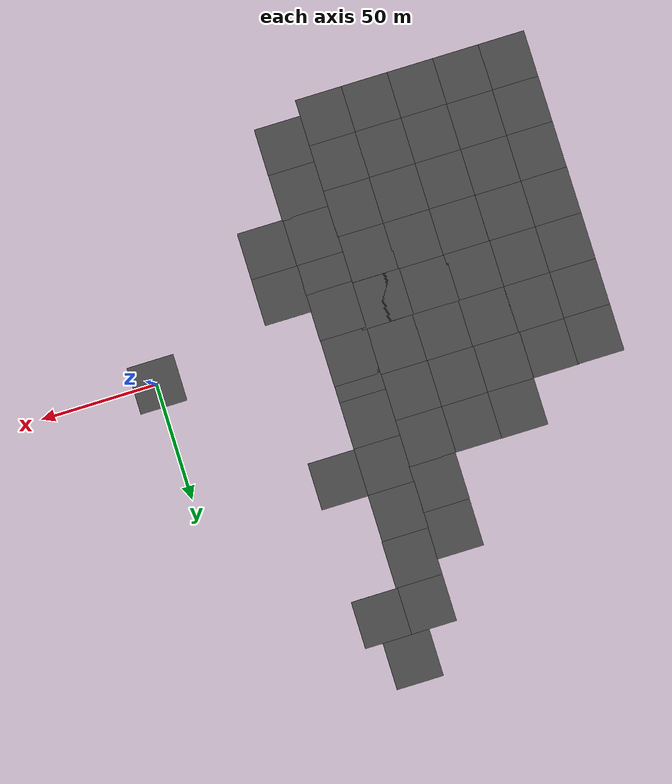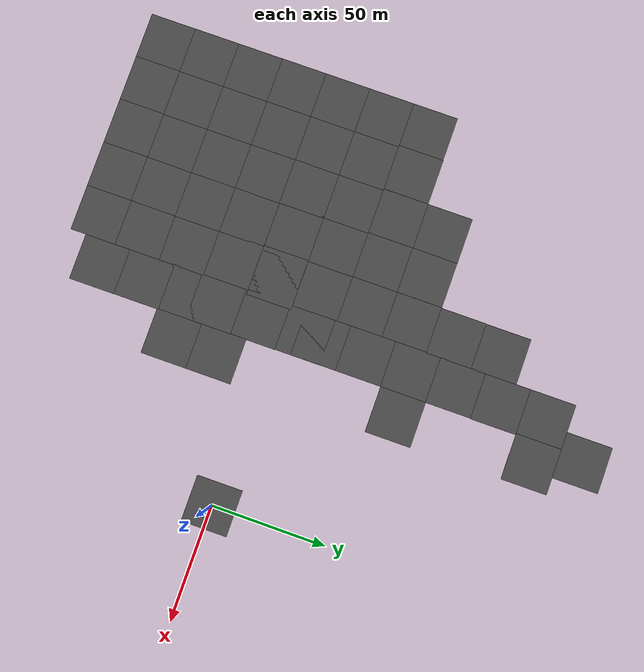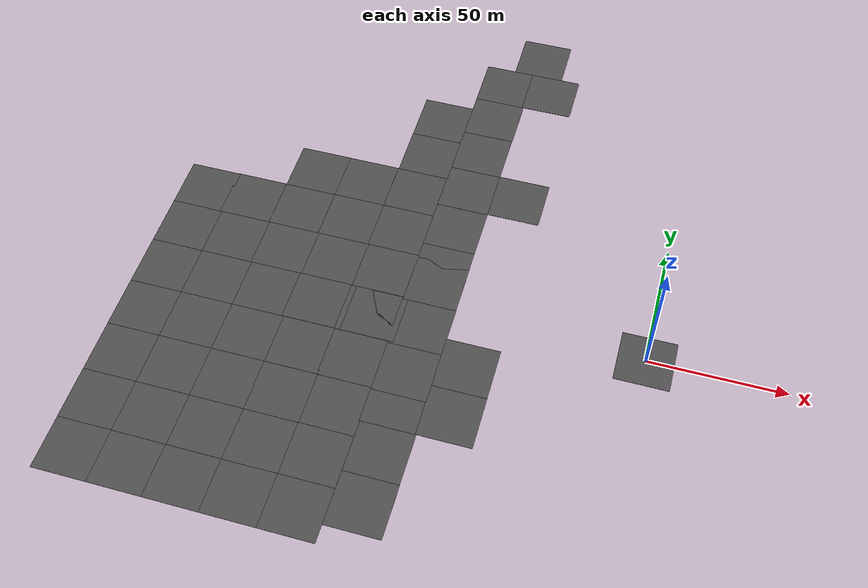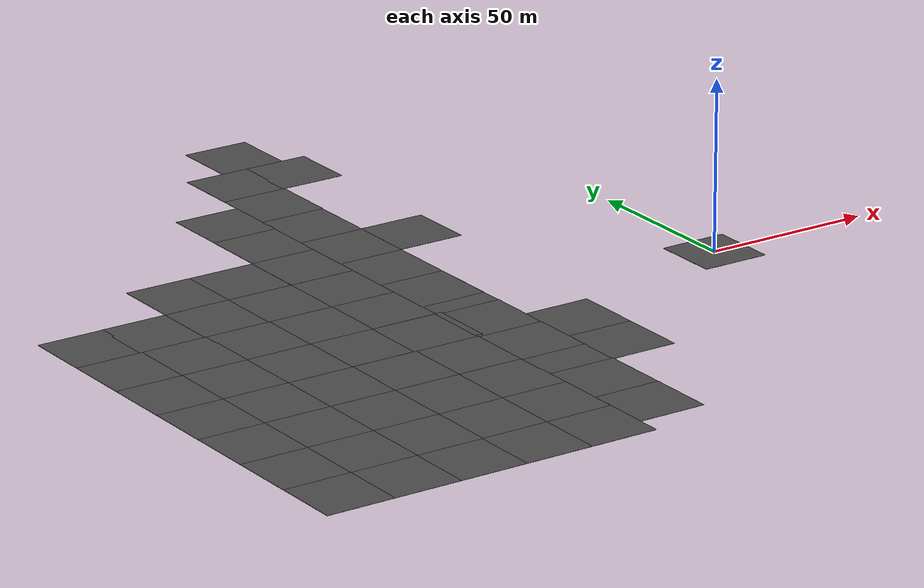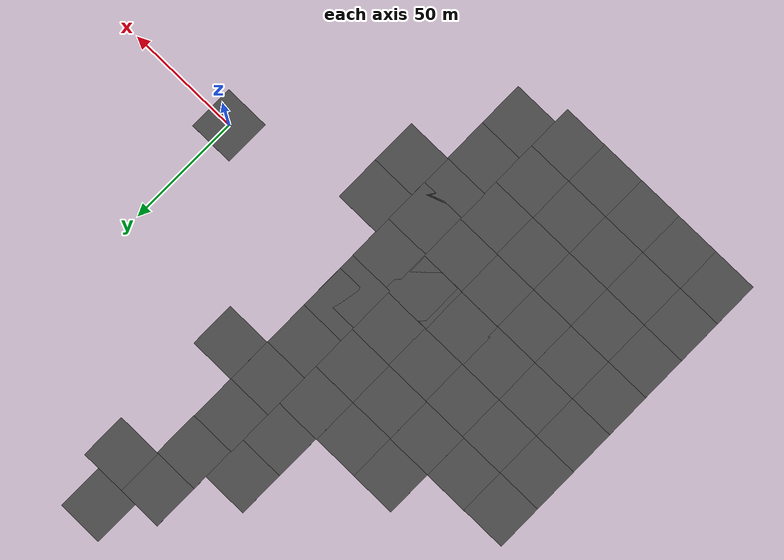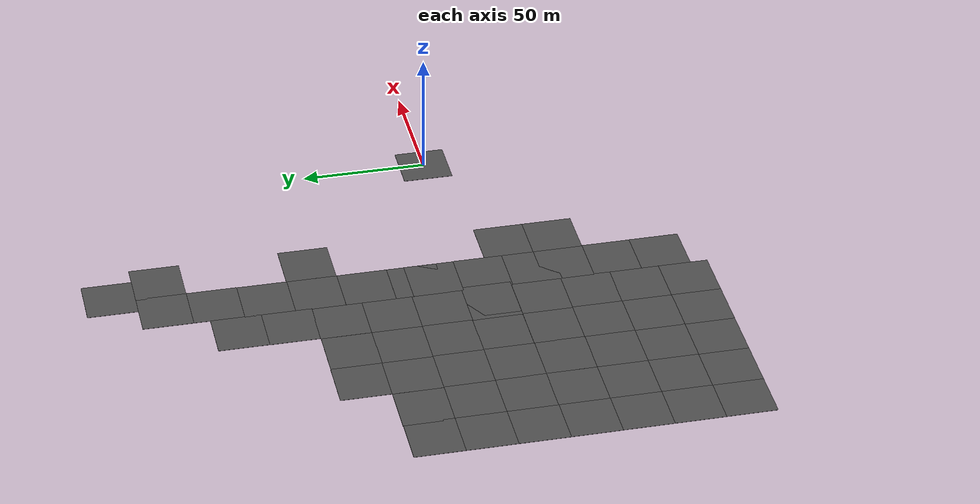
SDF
<sdf version="1.7">
 <world name="default">
  <model name="asphalt_plane">
   <static>1</static>
   <link name="link">
    <collision name="collision"><geometry><box><size>20 20 0.1</size></box></geometry></collision>
    <visual name="visual">
     <cast_shadows>0</cast_shadows>
     <geometry><box><size>20 20 0.1</size></box></geometry>
     <material>
      <script>
       <uri>model://asphalt_plane/materials/scripts</uri>
       <uri>model://asphalt_plane/materials/textures</uri>
       <name>vrc/asphalt</name>
      </script>
     </material>
    </visual>
   </link>
  </model>
  <model name="asphalt_plane_23">
   <static>1</static>
   <link name="link">
    <collision name="collision"><geometry><box><size>20 20 0.1</size></box></geometry></collision>
    <visual name="visual">
     <cast_shadows>0</cast_shadows>
     <geometry><box><size>20 20 0.1</size></box></geometry>
     <material>
      <script>
       <uri>model://asphalt_plane/materials/scripts</uri>
       <uri>model://asphalt_plane/materials/textures</uri>
       <name>vrc/asphalt</name>
      </script>
     </material>
    </visual>
   </link>
   <pose>-60 -40 0 0 -0 0</pose>
  </model>
  <model name="asphalt_plane_24">
   <static>1</static>
   <link name="link">
    <collision name="collision"><geometry><box><size>20 20 0.1</size></box></geometry></collision>
    <visual name="visual">
     <cast_shadows>0</cast_shadows>
     <geometry><box><size>20 20 0.1</size></box></geometry>
     <material>
      <script>
       <uri>model://asphalt_plane/materials/scripts</uri>
       <uri>model://asphalt_plane/materials/textures</uri>
       <name>vrc/asphalt</name>
      </script>
     </material>
    </visual>
   </link>
   <pose>-60 -20 0 0 -0 0</pose>
  </model>
  <model name="asphalt_plane_29_clone">
   <static>1</static>
   <link name="link">
    <collision name="collision"><geometry><box><size>20 20 0.1</size></box></geometry></collision>
    <visual name="visual">
     <cast_shadows>0</cast_shadows>
     <geometry><box><size>20 20 0.1</size></box></geometry>
     <material>
      <script>
       <uri>model://asphalt_plane/materials/scripts</uri>
       <uri>model://asphalt_plane/materials/textures</uri>
       <name>vrc/asphalt</name>
      </script>
     </material>
    </visual>
   </link>
   <pose>-60.0272 59.8561 0 0 -0 0</pose>
  </model>
  <model name="asphalt_plane_29_clone_35">
   <static>1</static>
   <link name="link">
    <collision name="collision"><geometry><box><size>20 20 0.1</size></box></geometry></collision>
    <visual name="visual">
     <cast_shadows>0</cast_shadows>
     <geometry><box><size>20 20 0.1</size></box></geometry>
     <material>
      <script>
       <uri>model://asphalt_plane/materials/scripts</uri>
       <uri>model://asphalt_plane/materials/textures</uri>
       <name>vrc/asphalt</name>
      </script>
     </material>
    </visual>
   </link>
   <pose>-79.8154 -7.24988 0 0 -0 0</pose>
  </model>
  <model name="asphalt_plane_29_clone_36">
   <static>1</static>
   <link name="link">
    <collision name="collision"><geometry><box><size>20 20 0.1</size></box></geometry></collision>
    <visual name="visual">
     <cast_shadows>0</cast_shadows>
     <geometry><box><size>20 20 0.1</size></box></geometry>
     <material>
      <script>
       <uri>model://asphalt_plane/materials/scripts</uri>
       <uri>model://asphalt_plane/materials/textures</uri>
       <name>vrc/asphalt</name>
      </script>
     </material>
    </visual>
   </link>
   <pose>-79.8314 -27.0702 0 0 -0 0</pose>
  </model>
  <model name="asphalt_plane_29_clone_37">
   <static>1</static>
   <link name="link">
    <collision name="collision"><geometry><box><size>20 20 0.1</size></box></geometry></collision>
    <visual name="visual">
     <cast_shadows>0</cast_shadows>
     <geometry><box><size>20 20 0.1</size></box></geometry>
     <material>
      <script>
       <uri>model://asphalt_plane/materials/scripts</uri>
       <uri>model://asphalt_plane/materials/textures</uri>
       <name>vrc/asphalt</name>
      </script>
     </material>
    </visual>
   </link>
   <pose>-79.8153 -40.0671 0 0 -0 0</pose>
  </model>
  <model name="asphalt_plane_29_clone_45">
   <static>1</static>
   <link name="link">
    <collision name="collision"><geometry><box><size>20 20 0.1</size></box></geometry></collision>
    <visual name="visual">
     <cast_shadows>0</cast_shadows>
     <geometry><box><size>20 20 0.1</size></box></geometry>
     <material>
      <script>
       <uri>model://asphalt_plane/materials/scripts</uri>
       <uri>model://asphalt_plane/materials/textures</uri>
       <name>vrc/asphalt</name>
      </script>
     </material>
    </visual>
   </link>
   <pose>-99.8105 13.4482 0 0 -0 0</pose>
  </model>
  <model name="asphalt_plane_29_clone_46">
   <static>1</static>
   <link name="link">
    <collision name="collision"><geometry><box><size>20 20 0.1</size></box></geometry></collision>
    <visual name="visual">
     <cast_shadows>0</cast_shadows>
     <geometry><box><size>20 20 0.1</size></box></geometry>
     <material>
      <script>
       <uri>model://asphalt_plane/materials/scripts</uri>
       <uri>model://asphalt_plane/materials/textures</uri>
       <name>vrc/asphalt</name>
      </script>
     </material>
    </visual>
   </link>
   <pose>-119.627 13.4689 0 0 -0 0</pose>
  </model>
  <model name="asphalt_plane_29_clone_47">
   <static>1</static>
   <link name="link">
    <collision name="collision"><geometry><box><size>20 20 0.1</size></box></geometry></collision>
    <visual name="visual">
     <cast_shadows>0</cast_shadows>
     <geometry><box><size>20 20 0.1</size></box></geometry>
     <material>
      <script>
       <uri>model://asphalt_plane/materials/scripts</uri>
       <uri>model://asphalt_plane/materials/textures</uri>
       <name>vrc/asphalt</name>
      </script>
     </material>
    </visual>
   </link>
   <pose>-139.581 13.4618 0 0 -0 0</pose>
  </model>
  <model name="asphalt_plane_29_clone_49">
   <static>1</static>
   <link name="link">
    <collision name="collision"><geometry><box><size>20 20 0.1</size></box></geometry></collision>
    <visual name="visual">
     <cast_shadows>0</cast_shadows>
     <geometry><box><size>20 20 0.1</size></box></geometry>
     <material>
      <script>
       <uri>model://asphalt_plane/materials/scripts</uri>
       <uri>model://asphalt_plane/materials/textures</uri>
       <name>vrc/asphalt</name>
      </script>
     </material>
    </visual>
   </link>
   <pose>-159.291 13.4361 0 0 -0 0</pose>
  </model>
  <model name="asphalt_plane_29_clone_52">
   <static>1</static>
   <link name="link">
    <collision name="collision"><geometry><box><size>20 20 0.1</size></box></geometry></collision>
    <visual name="visual">
     <cast_shadows>0</cast_shadows>
     <geometry><box><size>20 20 0.1</size></box></geometry>
     <material>
      <script>
       <uri>model://asphalt_plane/materials/scripts</uri>
       <uri>model://asphalt_plane/materials/textures</uri>
       <name>vrc/asphalt</name>
      </script>
     </material>
    </visual>
   </link>
   <pose>-179.252 13.443 0 0 -0 0</pose>
  </model>
  <model name="asphalt_plane_29_clone_53">
   <static>1</static>
   <link name="link">
    <collision name="collision"><geometry><box><size>20 20 0.1</size></box></geometry></collision>
    <visual name="visual">
     <cast_shadows>0</cast_shadows>
     <geometry><box><size>20 20 0.1</size></box></geometry>
     <material>
      <script>
       <uri>model://asphalt_plane/materials/scripts</uri>
       <uri>model://asphalt_plane/materials/textures</uri>
       <name>vrc/asphalt</name>
      </script>
     </material>
    </visual>
   </link>
   <pose>-179.25 -6.53618 0 0 -0 0</pose>
  </model>
  <model name="asphalt_plane_29_clone_54">
   <static>1</static>
   <link name="link">
    <collision name="collision"><geometry><box><size>20 20 0.1</size></box></geometry></collision>
    <visual name="visual">
     <cast_shadows>0</cast_shadows>
     <geometry><box><size>20 20 0.1</size></box></geometry>
     <material>
      <script>
       <uri>model://asphalt_plane/materials/scripts</uri>
       <uri>model://asphalt_plane/materials/textures</uri>
       <name>vrc/asphalt</name>
      </script>
     </material>
    </visual>
   </link>
   <pose>-179.246 -26.5369 0 0 -0 0</pose>
  </model>
  <model name="asphalt_plane_29_clone_55">
   <static>1</static>
   <link name="link">
    <collision name="collision"><geometry><box><size>20 20 0.1</size></box></geometry></collision>
    <visual name="visual">
     <cast_shadows>0</cast_shadows>
     <geometry><box><size>20 20 0.1</size></box></geometry>
     <material>
      <script>
       <uri>model://asphalt_plane/materials/scripts</uri>
       <uri>model://asphalt_plane/materials/textures</uri>
       <name>vrc/asphalt</name>
      </script>
     </material>
    </visual>
   </link>
   <pose>-179.197 -46.4492 0 0 -0 0</pose>
  </model>
  <model name="asphalt_plane_29_clone_56">
   <static>1</static>
   <link name="link">
    <collision name="collision"><geometry><box><size>20 20 0.1</size></box></geometry></collision>
    <visual name="visual">
     <cast_shadows>0</cast_shadows>
     <geometry><box><size>20 20 0.1</size></box></geometry>
     <material>
      <script>
       <uri>model://asphalt_plane/materials/scripts</uri>
       <uri>model://asphalt_plane/materials/textures</uri>
       <name>vrc/asphalt</name>
      </script>
     </material>
    </visual>
   </link>
   <pose>-179.192 -66.3918 0 0 -0 0</pose>
  </model>
  <model name="asphalt_plane_29_clone_57">
   <static>1</static>
   <link name="link">
    <collision name="collision"><geometry><box><size>20 20 0.1</size></box></geometry></collision>
    <visual name="visual">
     <cast_shadows>0</cast_shadows>
     <geometry><box><size>20 20 0.1</size></box></geometry>
     <material>
      <script>
       <uri>model://asphalt_plane/materials/scripts</uri>
       <uri>model://asphalt_plane/materials/textures</uri>
       <name>vrc/asphalt</name>
      </script>
     </material>
    </visual>
   </link>
   <pose>-159.192 -66.3927 0 0 -0 0</pose>
  </model>
  <model name="asphalt_plane_29_clone_58">
   <static>1</static>
   <link name="link">
    <collision name="collision"><geometry><box><size>20 20 0.1</size></box></geometry></collision>
    <visual name="visual">
     <cast_shadows>0</cast_shadows>
     <geometry><box><size>20 20 0.1</size></box></geometry>
     <material>
      <script>
       <uri>model://asphalt_plane/materials/scripts</uri>
       <uri>model://asphalt_plane/materials/textures</uri>
       <name>vrc/asphalt</name>
      </script>
     </material>
    </visual>
   </link>
   <pose>-159.2 -46.4101 0 0 -0 0</pose>
  </model>
  <model name="asphalt_plane_29_clone_59">
   <static>1</static>
   <link name="link">
    <collision name="collision"><geometry><box><size>20 20 0.1</size></box></geometry></collision>
    <visual name="visual">
     <cast_shadows>0</cast_shadows>
     <geometry><box><size>20 20 0.1</size></box></geometry>
     <material>
      <script>
       <uri>model://asphalt_plane/materials/scripts</uri>
       <uri>model://asphalt_plane/materials/textures</uri>
       <name>vrc/asphalt</name>
      </script>
     </material>
    </visual>
   </link>
   <pose>-139.198 -66.4036 0 0 -0 0</pose>
  </model>
  <model name="asphalt_plane_29_clone_60">
   <static>1</static>
   <link name="link">
    <collision name="collision"><geometry><box><size>20 20 0.1</size></box></geometry></collision>
    <visual name="visual">
     <cast_shadows>0</cast_shadows>
     <geometry><box><size>20 20 0.1</size></box></geometry>
     <material>
      <script>
       <uri>model://asphalt_plane/materials/scripts</uri>
       <uri>model://asphalt_plane/materials/textures</uri>
       <name>vrc/asphalt</name>
      </script>
     </material>
    </visual>
   </link>
   <pose>-139.214 -46.4284 0 0 -0 0</pose>
  </model>
  <model name="asphalt_plane_29_clone_61">
   <static>1</static>
   <link name="link">
    <collision name="collision"><geometry><box><size>20 20 0.1</size></box></geometry></collision>
    <visual name="visual">
     <cast_shadows>0</cast_shadows>
     <geometry><box><size>20 20 0.1</size></box></geometry>
     <material>
      <script>
       <uri>model://asphalt_plane/materials/scripts</uri>
       <uri>model://asphalt_plane/materials/textures</uri>
       <name>vrc/asphalt</name>
      </script>
     </material>
    </visual>
   </link>
   <pose>-179.153 -86.3372 0 0 -0 0</pose>
  </model>
  <model name="asphalt_plane_29_clone_62">
   <static>1</static>
   <link name="link">
    <collision name="collision"><geometry><box><size>20 20 0.1</size></box></geometry></collision>
    <visual name="visual">
     <cast_shadows>0</cast_shadows>
     <geometry><box><size>20 20 0.1</size></box></geometry>
     <material>
      <script>
       <uri>model://asphalt_plane/materials/scripts</uri>
       <uri>model://asphalt_plane/materials/textures</uri>
       <name>vrc/asphalt</name>
      </script>
     </material>
    </visual>
   </link>
   <pose>-159.331 -86.3289 0 0 -0 0</pose>
  </model>
  <model name="asphalt_plane_29_clone_63">
   <static>1</static>
   <link name="link">
    <collision name="collision"><geometry><box><size>20 20 0.1</size></box></geometry></collision>
    <visual name="visual">
     <cast_shadows>0</cast_shadows>
     <geometry><box><size>20 20 0.1</size></box></geometry>
     <material>
      <script>
       <uri>model://asphalt_plane/materials/scripts</uri>
       <uri>model://asphalt_plane/materials/textures</uri>
       <name>vrc/asphalt</name>
      </script>
     </material>
    </visual>
   </link>
   <pose>-139.418 -86.3301 0 0 -0 0</pose>
  </model>
  <model name="asphalt_plane_29_clone_64">
   <static>1</static>
   <link name="link">
    <collision name="collision"><geometry><box><size>20 20 0.1</size></box></geometry></collision>
    <visual name="visual">
     <cast_shadows>0</cast_shadows>
     <geometry><box><size>20 20 0.1</size></box></geometry>
     <material>
      <script>
       <uri>model://asphalt_plane/materials/scripts</uri>
       <uri>model://asphalt_plane/materials/textures</uri>
       <name>vrc/asphalt</name>
      </script>
     </material>
    </visual>
   </link>
   <pose>-119.458 -86.3388 0 0 -0 0</pose>
  </model>
  <model name="asphalt_plane_29_clone_65">
   <static>1</static>
   <link name="link">
    <collision name="collision"><geometry><box><size>20 20 0.1</size></box></geometry></collision>
    <visual name="visual">
     <cast_shadows>0</cast_shadows>
     <geometry><box><size>20 20 0.1</size></box></geometry>
     <material>
      <script>
       <uri>model://asphalt_plane/materials/scripts</uri>
       <uri>model://asphalt_plane/materials/textures</uri>
       <name>vrc/asphalt</name>
      </script>
     </material>
    </visual>
   </link>
   <pose>-119.318 -46.4348 0 0 -0 0</pose>
  </model>
  <model name="asphalt_plane_29_clone_66">
   <static>1</static>
   <link name="link">
    <collision name="collision"><geometry><box><size>20 20 0.1</size></box></geometry></collision>
    <visual name="visual">
     <cast_shadows>0</cast_shadows>
     <geometry><box><size>20 20 0.1</size></box></geometry>
     <material>
      <script>
       <uri>model://asphalt_plane/materials/scripts</uri>
       <uri>model://asphalt_plane/materials/textures</uri>
       <name>vrc/asphalt</name>
      </script>
     </material>
    </visual>
   </link>
   <pose>-119.376 -66.415 0 0 -0 0</pose>
  </model>
  <model name="asphalt_plane_29_clone_67">
   <static>1</static>
   <link name="link">
    <collision name="collision"><geometry><box><size>20 20 0.1</size></box></geometry></collision>
    <visual name="visual">
     <cast_shadows>0</cast_shadows>
     <geometry><box><size>20 20 0.1</size></box></geometry>
     <material>
      <script>
       <uri>model://asphalt_plane/materials/scripts</uri>
       <uri>model://asphalt_plane/materials/textures</uri>
       <name>vrc/asphalt</name>
      </script>
     </material>
    </visual>
   </link>
   <pose>-99.4622 -86.3208 0 0 -0 0</pose>
  </model>
  <model name="asphalt_plane_29_clone_68">
   <static>1</static>
   <link name="link">
    <collision name="collision"><geometry><box><size>20 20 0.1</size></box></geometry></collision>
    <visual name="visual">
     <cast_shadows>0</cast_shadows>
     <geometry><box><size>20 20 0.1</size></box></geometry>
     <material>
      <script>
       <uri>model://asphalt_plane/materials/scripts</uri>
       <uri>model://asphalt_plane/materials/textures</uri>
       <name>vrc/asphalt</name>
      </script>
     </material>
    </visual>
   </link>
   <pose>-99.4822 -66.3282 0 0 -0 0</pose>
  </model>
  <model name="asphalt_plane_29_clone_69">
   <static>1</static>
   <link name="link">
    <collision name="collision"><geometry><box><size>20 20 0.1</size></box></geometry></collision>
    <visual name="visual">
     <cast_shadows>0</cast_shadows>
     <geometry><box><size>20 20 0.1</size></box></geometry>
     <material>
      <script>
       <uri>model://asphalt_plane/materials/scripts</uri>
       <uri>model://asphalt_plane/materials/textures</uri>
       <name>vrc/asphalt</name>
      </script>
     </material>
    </visual>
   </link>
   <pose>-99.4486 -46.4554 0 0 -0 0</pose>
  </model>
  <model name="asphalt_plane_29_clone_70">
   <static>1</static>
   <link name="link">
    <collision name="collision"><geometry><box><size>20 20 0.1</size></box></geometry></collision>
    <visual name="visual">
     <cast_shadows>0</cast_shadows>
     <geometry><box><size>20 20 0.1</size></box></geometry>
     <material>
      <script>
       <uri>model://asphalt_plane/materials/scripts</uri>
       <uri>model://asphalt_plane/materials/textures</uri>
       <name>vrc/asphalt</name>
      </script>
     </material>
    </visual>
   </link>
   <pose>-79.5271 -59.4735 0 0 -0 0</pose>
  </model>
  <model name="asphalt_plane_29_clone_71">
   <static>1</static>
   <link name="link">
    <collision name="collision"><geometry><box><size>20 20 0.1</size></box></geometry></collision>
    <visual name="visual">
     <cast_shadows>0</cast_shadows>
     <geometry><box><size>20 20 0.1</size></box></geometry>
     <material>
      <script>
       <uri>model://asphalt_plane/materials/scripts</uri>
       <uri>model://asphalt_plane/materials/textures</uri>
       <name>vrc/asphalt</name>
      </script>
     </material>
    </visual>
   </link>
   <pose>-79.4662 -79.4729 0 0 -0 0</pose>
  </model>
  <model name="asphalt_plane_29_clone_72">
   <static>1</static>
   <link name="link">
    <collision name="collision"><geometry><box><size>20 20 0.1</size></box></geometry></collision>
    <visual name="visual">
     <cast_shadows>0</cast_shadows>
     <geometry><box><size>20 20 0.1</size></box></geometry>
     <material>
      <script>
       <uri>model://asphalt_plane/materials/scripts</uri>
       <uri>model://asphalt_plane/materials/textures</uri>
       <name>vrc/asphalt</name>
      </script>
     </material>
    </visual>
   </link>
   <pose>-159.25 -26.4131 0 0 -0 0</pose>
  </model>
  <model name="asphalt_plane_29_clone_73">
   <static>1</static>
   <link name="link">
    <collision name="collision"><geometry><box><size>20 20 0.1</size></box></geometry></collision>
    <visual name="visual">
     <cast_shadows>0</cast_shadows>
     <geometry><box><size>20 20 0.1</size></box></geometry>
     <material>
      <script>
       <uri>model://asphalt_plane/materials/scripts</uri>
       <uri>model://asphalt_plane/materials/textures</uri>
       <name>vrc/asphalt</name>
      </script>
     </material>
    </visual>
   </link>
   <pose>-159.262 -6.50202 0 0 -0 0</pose>
  </model>
  <model name="asphalt_plane_29_clone_13_clone_0">
   <static>1</static>
   <link name="link">
    <collision name="collision"><geometry><box><size>20 20 0.1</size></box></geometry></collision>
    <visual name="visual">
     <cast_shadows>0</cast_shadows>
     <geometry><box><size>20 20 0.1</size></box></geometry>
     <material>
      <script>
       <uri>model://asphalt_plane/materials/scripts</uri>
       <uri>model://asphalt_plane/materials/textures</uri>
       <name>vrc/asphalt</name>
      </script>
     </material>
    </visual>
   </link>
   <pose>-60.3598 119.674 0 0 -0 0</pose>
  </model>
  <model name="asphalt_plane_29_clone_13_clone_1">
   <static>1</static>
   <link name="link">
    <collision name="collision"><geometry><box><size>20 20 0.1</size></box></geometry></collision>
    <visual name="visual">
     <cast_shadows>0</cast_shadows>
     <geometry><box><size>20 20 0.1</size></box></geometry>
     <material>
      <script>
       <uri>model://asphalt_plane/materials/scripts</uri>
       <uri>model://asphalt_plane/materials/textures</uri>
       <name>vrc/asphalt</name>
      </script>
     </material>
    </visual>
   </link>
   <pose>-79.754 99.645 0 0 -0 0</pose>
  </model>
  <model name="asphalt_plane_29_clone_13_clone_2">
   <static>1</static>
   <link name="link">
    <collision name="collision"><geometry><box><size>20 20 0.1</size></box></geometry></collision>
    <visual name="visual">
     <cast_shadows>0</cast_shadows>
     <geometry><box><size>20 20 0.1</size></box></geometry>
     <material>
      <script>
       <uri>model://asphalt_plane/materials/scripts</uri>
       <uri>model://asphalt_plane/materials/textures</uri>
       <name>vrc/asphalt</name>
      </script>
     </material>
    </visual>
   </link>
   <pose>-79.945 79.6506 0 0 -0 0</pose>
  </model>
  <model name="asphalt_plane_29_clone_13_clone_3">
   <static>1</static>
   <link name="link">
    <collision name="collision"><geometry><box><size>20 20 0.1</size></box></geometry></collision>
    <visual name="visual">
     <cast_shadows>0</cast_shadows>
     <geometry><box><size>20 20 0.1</size></box></geometry>
     <material>
      <script>
       <uri>model://asphalt_plane/materials/scripts</uri>
       <uri>model://asphalt_plane/materials/textures</uri>
       <name>vrc/asphalt</name>
      </script>
     </material>
    </visual>
   </link>
   <pose>-79.7565 119.626 0 0 -0 0</pose>
  </model>
  <model name="asphalt_plane_29_clone_13_clone_4">
   <static>1</static>
   <link name="link">
    <collision name="collision"><geometry><box><size>20 20 0.1</size></box></geometry></collision>
    <visual name="visual">
     <cast_shadows>0</cast_shadows>
     <geometry><box><size>20 20 0.1</size></box></geometry>
     <material>
      <script>
       <uri>model://asphalt_plane/materials/scripts</uri>
       <uri>model://asphalt_plane/materials/textures</uri>
       <name>vrc/asphalt</name>
      </script>
     </material>
    </visual>
   </link>
   <pose>-80.0332 59.6538 0 0 -0 0</pose>
  </model>
  <model name="asphalt_plane_29_clone_13_clone_5">
   <static>1</static>
   <link name="link">
    <collision name="collision"><geometry><box><size>20 20 0.1</size></box></geometry></collision>
    <visual name="visual">
     <cast_shadows>0</cast_shadows>
     <geometry><box><size>20 20 0.1</size></box></geometry>
     <material>
      <script>
       <uri>model://asphalt_plane/materials/scripts</uri>
       <uri>model://asphalt_plane/materials/textures</uri>
       <name>vrc/asphalt</name>
      </script>
     </material>
    </visual>
   </link>
   <pose>-80.0121 39.6456 0 0 -0 0</pose>
  </model>
  <model name="asphalt_plane_29_clone_13_clone_6">
   <static>1</static>
   <link name="link">
    <collision name="collision"><geometry><box><size>20 20 0.1</size></box></geometry></collision>
    <visual name="visual">
     <cast_shadows>0</cast_shadows>
     <geometry><box><size>20 20 0.1</size></box></geometry>
     <material>
      <script>
       <uri>model://asphalt_plane/materials/scripts</uri>
       <uri>model://asphalt_plane/materials/textures</uri>
       <name>vrc/asphalt</name>
      </script>
     </material>
    </visual>
   </link>
   <pose>-80.0134 19.6431 0 0 -0 0</pose>
  </model>
  <model name="asphalt_plane_29_clone_13_clone_7">
   <static>1</static>
   <link name="link">
    <collision name="collision"><geometry><box><size>20 20 0.1</size></box></geometry></collision>
    <visual name="visual">
     <cast_shadows>0</cast_shadows>
     <geometry><box><size>20 20 0.1</size></box></geometry>
     <material>
      <script>
       <uri>model://asphalt_plane/materials/scripts</uri>
       <uri>model://asphalt_plane/materials/textures</uri>
       <name>vrc/asphalt</name>
      </script>
     </material>
    </visual>
   </link>
   <pose>-99.9855 33.4473 0 0 -0 0</pose>
  </model>
  <model name="asphalt_plane_29_clone_13_clone_8">
   <static>1</static>
   <link name="link">
    <collision name="collision"><geometry><box><size>20 20 0.1</size></box></geometry></collision>
    <visual name="visual">
     <cast_shadows>0</cast_shadows>
     <geometry><box><size>20 20 0.1</size></box></geometry>
     <material>
      <script>
       <uri>model://asphalt_plane/materials/scripts</uri>
       <uri>model://asphalt_plane/materials/textures</uri>
       <name>vrc/asphalt</name>
      </script>
     </material>
    </visual>
   </link>
   <pose>-99.9739 53.4544 0 0 -0 0</pose>
  </model>
  <model name="asphalt_plane_29_clone_13_clone_9">
   <static>1</static>
   <link name="link">
    <collision name="collision"><geometry><box><size>20 20 0.1</size></box></geometry></collision>
    <visual name="visual">
     <cast_shadows>0</cast_shadows>
     <geometry><box><size>20 20 0.1</size></box></geometry>
     <material>
      <script>
       <uri>model://asphalt_plane/materials/scripts</uri>
       <uri>model://asphalt_plane/materials/textures</uri>
       <name>vrc/asphalt</name>
      </script>
     </material>
    </visual>
   </link>
   <pose>-119.981 33.4667 0 0 -0 0</pose>
  </model>
  <model name="asphalt_plane_29_clone_13_clone_10">
   <static>1</static>
   <link name="link">
    <collision name="collision"><geometry><box><size>20 20 0.1</size></box></geometry></collision>
    <visual name="visual">
     <cast_shadows>0</cast_shadows>
     <geometry><box><size>20 20 0.1</size></box></geometry>
     <material>
      <script>
       <uri>model://asphalt_plane/materials/scripts</uri>
       <uri>model://asphalt_plane/materials/textures</uri>
       <name>vrc/asphalt</name>
      </script>
     </material>
    </visual>
   </link>
   <pose>-139.993 33.4571 0 0 -0 0</pose>
  </model>
  <model name="asphalt_plane_29_clone_13_clone_11">
   <static>1</static>
   <link name="link">
    <collision name="collision"><geometry><box><size>20 20 0.1</size></box></geometry></collision>
    <visual name="visual">
     <cast_shadows>0</cast_shadows>
     <geometry><box><size>20 20 0.1</size></box></geometry>
     <material>
      <script>
       <uri>model://asphalt_plane/materials/scripts</uri>
       <uri>model://asphalt_plane/materials/textures</uri>
       <name>vrc/asphalt</name>
      </script>
     </material>
    </visual>
   </link>
   <pose>-160.011 33.4226 0 0 -0 0</pose>
  </model>
  <model name="asphalt_plane_29_clone_13_clone_12">
   <static>1</static>
   <link name="link">
    <collision name="collision"><geometry><box><size>20 20 0.1</size></box></geometry></collision>
    <visual name="visual">
     <cast_shadows>0</cast_shadows>
     <geometry><box><size>20 20 0.1</size></box></geometry>
     <material>
      <script>
       <uri>model://asphalt_plane/materials/scripts</uri>
       <uri>model://asphalt_plane/materials/textures</uri>
       <name>vrc/asphalt</name>
      </script>
     </material>
    </visual>
   </link>
   <pose>-120.004 53.3231 0 0 -0 0</pose>
  </model>
  <model name="asphalt_plane_29_clone_13_clone_13">
   <static>1</static>
   <link name="link">
    <collision name="collision"><geometry><box><size>20 20 0.1</size></box></geometry></collision>
    <visual name="visual">
     <cast_shadows>0</cast_shadows>
     <geometry><box><size>20 20 0.1</size></box></geometry>
     <material>
      <script>
       <uri>model://asphalt_plane/materials/scripts</uri>
       <uri>model://asphalt_plane/materials/textures</uri>
       <name>vrc/asphalt</name>
      </script>
     </material>
    </visual>
   </link>
   <pose>-99.752 73.2229 0 0 -0 0</pose>
  </model>
  <model name="asphalt_plane_29_clone_13_clone_15">
   <static>1</static>
   <link name="link">
    <collision name="collision"><geometry><box><size>20 20 0.1</size></box></geometry></collision>
    <visual name="visual">
     <cast_shadows>0</cast_shadows>
     <geometry><box><size>20 20 0.1</size></box></geometry>
     <material>
      <script>
       <uri>model://asphalt_plane/materials/scripts</uri>
       <uri>model://asphalt_plane/materials/textures</uri>
       <name>vrc/asphalt</name>
      </script>
     </material>
    </visual>
   </link>
   <pose>-99.6511 93.2238 0 0 -0 0</pose>
  </model>
  <model name="asphalt_plane_29_clone_13_clone_16">
   <static>1</static>
   <link name="link">
    <collision name="collision"><geometry><box><size>20 20 0.1</size></box></geometry></collision>
    <visual name="visual">
     <cast_shadows>0</cast_shadows>
     <geometry><box><size>20 20 0.1</size></box></geometry>
     <material>
      <script>
       <uri>model://asphalt_plane/materials/scripts</uri>
       <uri>model://asphalt_plane/materials/textures</uri>
       <name>vrc/asphalt</name>
      </script>
     </material>
    </visual>
   </link>
   <pose>-139.92 53.3839 0 0 -0 0</pose>
  </model>
  <model name="asphalt_plane_29_clone_13_clone_17">
   <static>1</static>
   <link name="link">
    <collision name="collision"><geometry><box><size>20 20 0.1</size></box></geometry></collision>
    <visual name="visual">
     <cast_shadows>0</cast_shadows>
     <geometry><box><size>20 20 0.1</size></box></geometry>
     <material>
      <script>
       <uri>model://asphalt_plane/materials/scripts</uri>
       <uri>model://asphalt_plane/materials/textures</uri>
       <name>vrc/asphalt</name>
      </script>
     </material>
    </visual>
   </link>
   <pose>-179.259 33.2913 0 0 -0 0</pose>
  </model>
  <model name="asphalt_plane_29_clone_13_clone_22">
   <static>1</static>
   <link name="link">
    <collision name="collision"><geometry><box><size>20 20 0.1</size></box></geometry></collision>
    <visual name="visual">
     <cast_shadows>0</cast_shadows>
     <geometry><box><size>20 20 0.1</size></box></geometry>
     <material>
      <script>
       <uri>model://asphalt_plane/materials/scripts</uri>
       <uri>model://asphalt_plane/materials/textures</uri>
       <name>vrc/asphalt</name>
      </script>
     </material>
    </visual>
   </link>
   <pose>-67.8837 139.611 0 0 -0 0</pose>
  </model>
  <model name="asphalt_plane_29_clone_13_clone_23">
   <static>1</static>
   <link name="link">
    <collision name="collision"><geometry><box><size>20 20 0.1</size></box></geometry></collision>
    <visual name="visual">
     <cast_shadows>0</cast_shadows>
     <geometry><box><size>20 20 0.1</size></box></geometry>
     <material>
      <script>
       <uri>model://asphalt_plane/materials/scripts</uri>
       <uri>model://asphalt_plane/materials/textures</uri>
       <name>vrc/asphalt</name>
      </script>
     </material>
    </visual>
   </link>
   <pose>-79.9538 12.6767 0 0 -0 0</pose>
  </model>
  <model name="asphalt_plane_29_clone_13_clone_24">
   <static>1</static>
   <link name="link">
    <collision name="collision"><geometry><box><size>20 20 0.1</size></box></geometry></collision>
    <visual name="visual">
     <cast_shadows>0</cast_shadows>
     <geometry><box><size>20 20 0.1</size></box></geometry>
     <material>
      <script>
       <uri>model://asphalt_plane/materials/scripts</uri>
       <uri>model://asphalt_plane/materials/textures</uri>
       <name>vrc/asphalt</name>
      </script>
     </material>
    </visual>
   </link>
   <pose>-139.409 -6.521 0 0 -0 0</pose>
  </model>
  <model name="asphalt_plane_29_clone_13_clone_25">
   <static>1</static>
   <link name="link">
    <collision name="collision"><geometry><box><size>20 20 0.1</size></box></geometry></collision>
    <visual name="visual">
     <cast_shadows>0</cast_shadows>
     <geometry><box><size>20 20 0.1</size></box></geometry>
     <material>
      <script>
       <uri>model://asphalt_plane/materials/scripts</uri>
       <uri>model://asphalt_plane/materials/textures</uri>
       <name>vrc/asphalt</name>
      </script>
     </material>
    </visual>
   </link>
   <pose>-120.07 -6.39526 0 0 -0 0</pose>
  </model>
  <model name="asphalt_plane_29_clone_13_clone_26">
   <static>1</static>
   <link name="link">
    <collision name="collision"><geometry><box><size>20 20 0.1</size></box></geometry></collision>
    <visual name="visual">
     <cast_shadows>0</cast_shadows>
     <geometry><box><size>20 20 0.1</size></box></geometry>
     <material>
      <script>
       <uri>model://asphalt_plane/materials/scripts</uri>
       <uri>model://asphalt_plane/materials/textures</uri>
       <name>vrc/asphalt</name>
      </script>
     </material>
    </visual>
   </link>
   <pose>-100.178 -6.54907 0 0 -0 0</pose>
  </model>
  <model name="asphalt_plane_29_clone_13_clone_27">
   <static>1</static>
   <link name="link">
    <collision name="collision"><geometry><box><size>20 20 0.1</size></box></geometry></collision>
    <visual name="visual">
     <cast_shadows>0</cast_shadows>
     <geometry><box><size>20 20 0.1</size></box></geometry>
     <material>
      <script>
       <uri>model://asphalt_plane/materials/scripts</uri>
       <uri>model://asphalt_plane/materials/textures</uri>
       <name>vrc/asphalt</name>
      </script>
     </material>
    </visual>
   </link>
   <pose>-97.9738 -6.44207 0 0 -0 0</pose>
  </model>
  <model name="asphalt_plane_29_clone_13_clone_28">
   <static>1</static>
   <link name="link">
    <collision name="collision"><geometry><box><size>20 20 0.1</size></box></geometry></collision>
    <visual name="visual">
     <cast_shadows>0</cast_shadows>
     <geometry><box><size>20 20 0.1</size></box></geometry>
     <material>
      <script>
       <uri>model://asphalt_plane/materials/scripts</uri>
       <uri>model://asphalt_plane/materials/textures</uri>
       <name>vrc/asphalt</name>
      </script>
     </material>
    </visual>
   </link>
   <pose>-139.242 -26.5074 0 0 -0 0</pose>
  </model>
  <model name="asphalt_plane_29_clone_13_clone_29">
   <static>1</static>
   <link name="link">
    <collision name="collision"><geometry><box><size>20 20 0.1</size></box></geometry></collision>
    <visual name="visual">
     <cast_shadows>0</cast_shadows>
     <geometry><box><size>20 20 0.1</size></box></geometry>
     <material>
      <script>
       <uri>model://asphalt_plane/materials/scripts</uri>
       <uri>model://asphalt_plane/materials/textures</uri>
       <name>vrc/asphalt</name>
      </script>
     </material>
    </visual>
   </link>
   <pose>-119.388 -26.4299 0 0 -0 0</pose>
  </model>
  <model name="asphalt_plane_29_clone_13_clone_30">
   <static>1</static>
   <link name="link">
    <collision name="collision"><geometry><box><size>20 20 0.1</size></box></geometry></collision>
    <visual name="visual">
     <cast_shadows>0</cast_shadows>
     <geometry><box><size>20 20 0.1</size></box></geometry>
     <material>
      <script>
       <uri>model://asphalt_plane/materials/scripts</uri>
       <uri>model://asphalt_plane/materials/textures</uri>
       <name>vrc/asphalt</name>
      </script>
     </material>
    </visual>
   </link>
   <pose>-99.7903 -26.4954 0 0 -0 0</pose>
  </model>
 </world>
</sdf>
